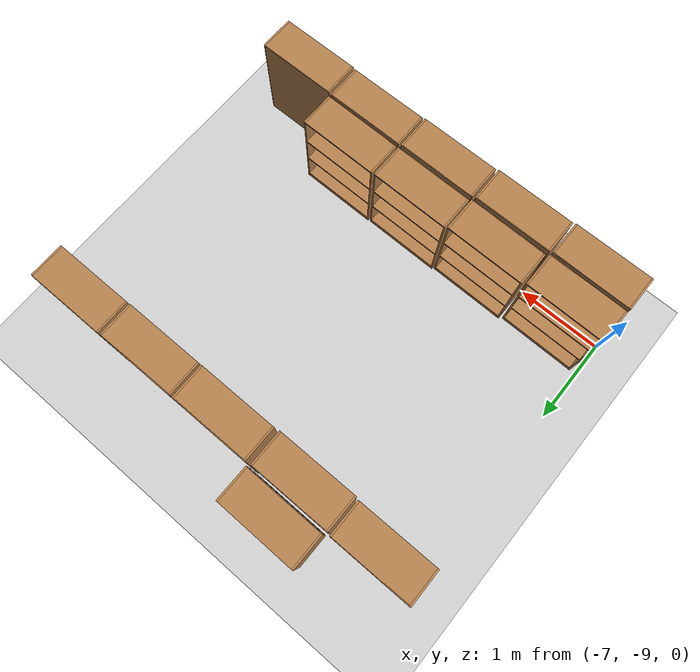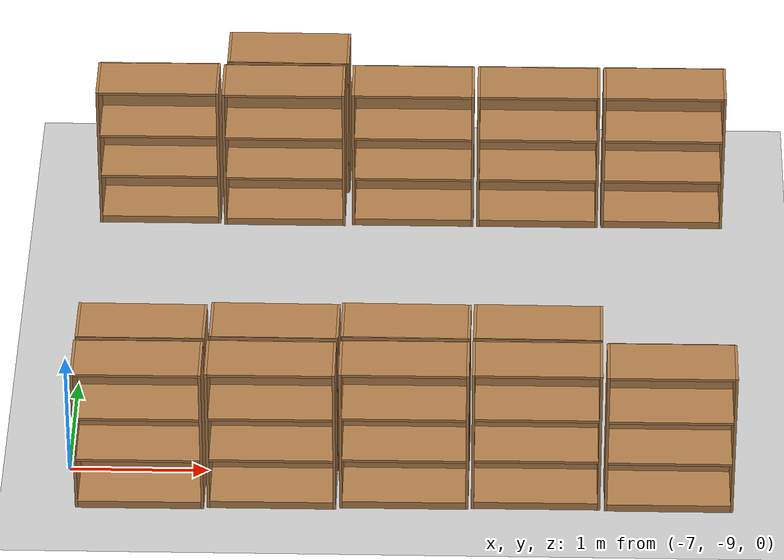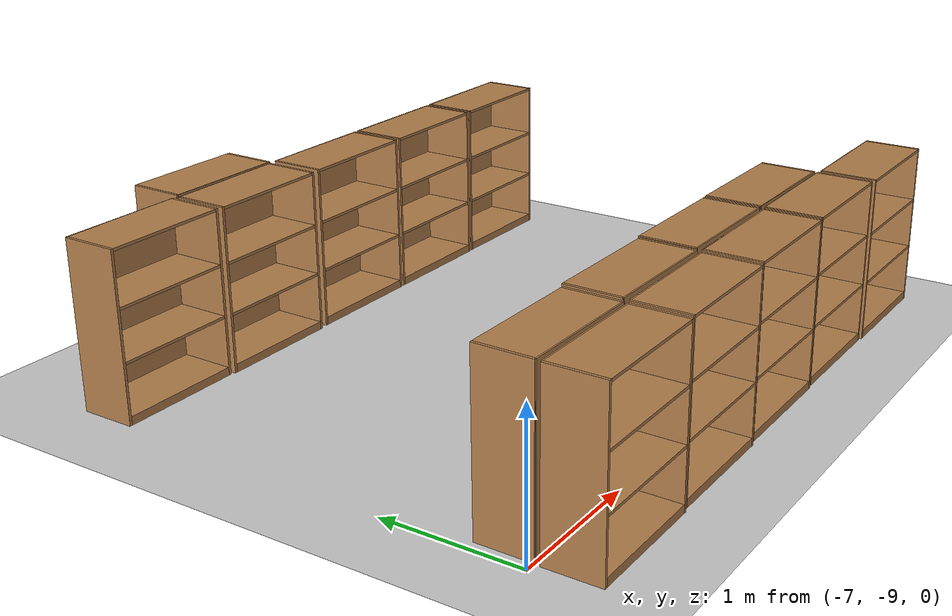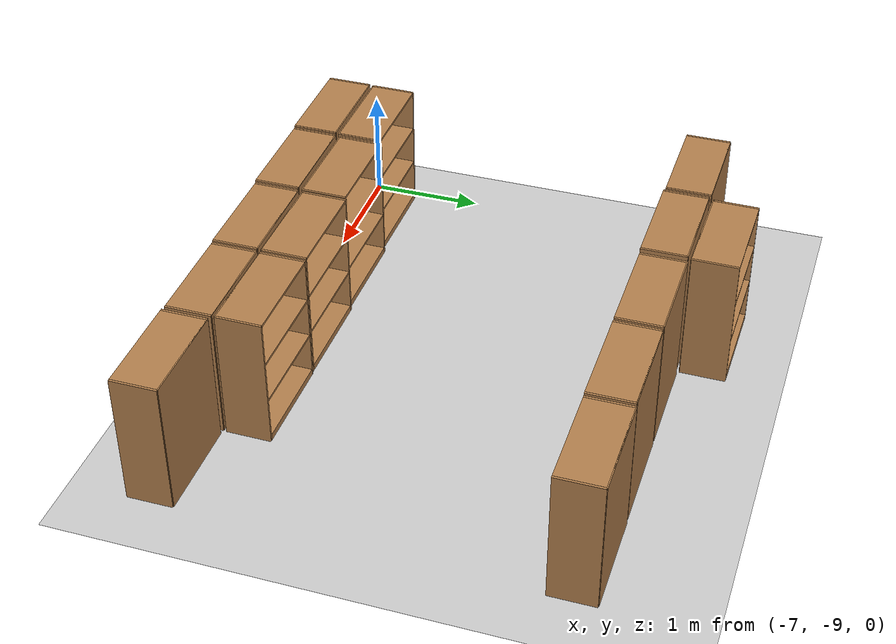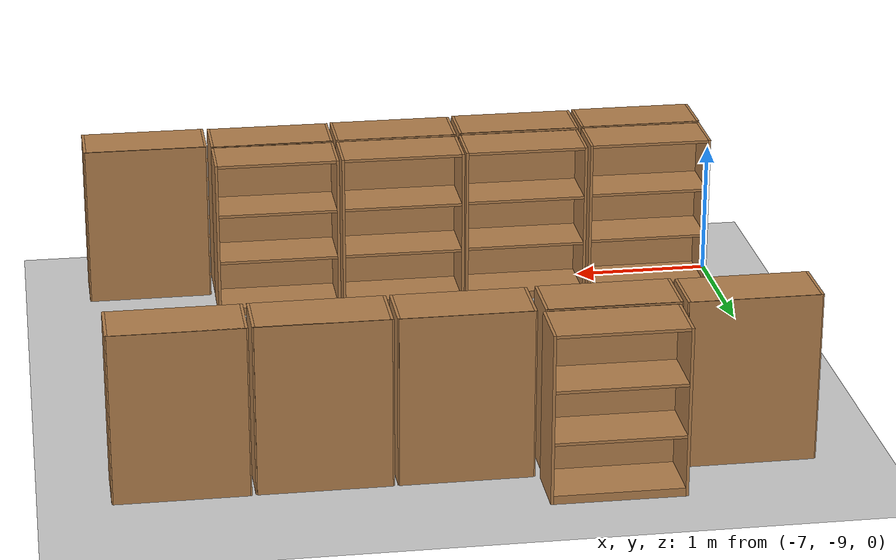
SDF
<sdf version="1.6">
 <world name="default">
  <model name="ground_plane">
   <static>1</static>
   <link name="link">
    <collision name="collision">
     <geometry><plane><normal>0 0 1</normal><size>100 100</size></plane></geometry>
     <surface>
      <contact><collide_bitmask>65535</collide_bitmask></contact>
      <friction><ode><mu>100</mu><mu2>50</mu2></ode></friction>
     </surface>
    </collision>
    <visual name="visual">
     <cast_shadows>0</cast_shadows>
     <geometry><plane><normal>0 0 1</normal><size>100 100</size></plane></geometry>
     <material>
      <script><uri>file://media/materials/scripts/gazebo.material</uri><name>Gazebo/Grey</name></script>
     </material>
    </visual>
   </link>
  </model>
  <model name="bookshelf_clone_75">
   <static>1</static>
   <link name="link">
    <inertial><mass>1</mass></inertial>
    <collision name="back">
     <pose>0 0.005 0.6 0 -0 0</pose>
     <geometry><box><size>0.9 0.01 1.2</size></box></geometry>
    </collision>
    <visual name="visual1">
     <pose>0 0.005 0.6 0 -0 0</pose>
     <geometry><box><size>0.9 0.01 1.2</size></box></geometry>
     <material>
      <script><uri>file://media/materials/scripts/gazebo.material</uri><name>Gazebo/Wood</name></script>
     </material>
    </visual>
    <collision name="left_side">
     <pose>0.45 -0.195 0.6 0 -0 0</pose>
     <geometry><box><size>0.02 0.4 1.2</size></box></geometry>
    </collision>
    <visual name="visual2">
     <pose>0.45 -0.195 0.6 0 -0 0</pose>
     <geometry><box><size>0.02 0.4 1.2</size></box></geometry>
     <material>
      <script><uri>file://media/materials/scripts/gazebo.material</uri><name>Gazebo/Wood</name></script>
     </material>
    </visual>
    <collision name="right_side">
     <pose>-0.45 -0.195 0.6 0 -0 0</pose>
     <geometry><box><size>0.02 0.4 1.2</size></box></geometry>
    </collision>
    <visual name="visual3">
     <pose>-0.45 -0.195 0.6 0 -0 0</pose>
     <geometry><box><size>0.02 0.4 1.2</size></box></geometry>
     <material>
      <script><uri>file://media/materials/scripts/gazebo.material</uri><name>Gazebo/Wood</name></script>
     </material>
    </visual>
    <collision name="bottom">
     <pose>0 -0.195 0.03 0 -0 0</pose>
     <geometry><box><size>0.88 0.4 0.06</size></box></geometry>
    </collision>
    <visual name="visual4">
     <pose>0 -0.195 0.03 0 -0 0</pose>
     <geometry><box><size>0.88 0.4 0.06</size></box></geometry>
     <material>
      <script><uri>file://media/materials/scripts/gazebo.material</uri><name>Gazebo/Wood</name></script>
     </material>
    </visual>
    <collision name="top">
     <pose>0 -0.195 1.19 0 -0 0</pose>
     <geometry><box><size>0.88 0.4 0.02</size></box></geometry>
    </collision>
    <visual name="visual5">
     <pose>0 -0.195 1.19 0 -0 0</pose>
     <geometry><box><size>0.88 0.4 0.02</size></box></geometry>
     <material>
      <script><uri>file://media/materials/scripts/gazebo.material</uri><name>Gazebo/Wood</name></script>
     </material>
    </visual>
    <collision name="low_shelf">
     <pose>0 -0.195 0.43 0 -0 0</pose>
     <geometry><box><size>0.88 0.4 0.02</size></box></geometry>
    </collision>
    <visual name="visual6">
     <pose>0 -0.195 0.43 0 -0 0</pose>
     <geometry><box><size>0.88 0.4 0.02</size></box></geometry>
     <material>
      <script><uri>file://media/materials/scripts/gazebo.material</uri><name>Gazebo/Wood</name></script>
     </material>
    </visual>
    <collision name="high_shelf">
     <pose>0 -0.195 0.8 0 -0 0</pose>
     <geometry><box><size>0.88 0.4 0.02</size></box></geometry>
    </collision>
    <visual name="visual7">
     <pose>0 -0.195 0.8 0 -0 0</pose>
     <geometry><box><size>0.88 0.4 0.02</size></box></geometry>
     <material>
      <script><uri>file://media/materials/scripts/gazebo.material</uri><name>Gazebo/Wood</name></script>
     </material>
    </visual>
   </link>
   <pose>-2.70114 -5.58327 0 0 -0 0.00089</pose>
  </model>
  <model name="bookshelf_clone_76">
   <static>1</static>
   <link name="link">
    <inertial><mass>1</mass></inertial>
    <collision name="back">
     <pose>0 0.005 0.6 0 -0 0</pose>
     <geometry><box><size>0.9 0.01 1.2</size></box></geometry>
    </collision>
    <visual name="visual1">
     <pose>0 0.005 0.6 0 -0 0</pose>
     <geometry><box><size>0.9 0.01 1.2</size></box></geometry>
     <material>
      <script><uri>file://media/materials/scripts/gazebo.material</uri><name>Gazebo/Wood</name></script>
     </material>
    </visual>
    <collision name="left_side">
     <pose>0.45 -0.195 0.6 0 -0 0</pose>
     <geometry><box><size>0.02 0.4 1.2</size></box></geometry>
    </collision>
    <visual name="visual2">
     <pose>0.45 -0.195 0.6 0 -0 0</pose>
     <geometry><box><size>0.02 0.4 1.2</size></box></geometry>
     <material>
      <script><uri>file://media/materials/scripts/gazebo.material</uri><name>Gazebo/Wood</name></script>
     </material>
    </visual>
    <collision name="right_side">
     <pose>-0.45 -0.195 0.6 0 -0 0</pose>
     <geometry><box><size>0.02 0.4 1.2</size></box></geometry>
    </collision>
    <visual name="visual3">
     <pose>-0.45 -0.195 0.6 0 -0 0</pose>
     <geometry><box><size>0.02 0.4 1.2</size></box></geometry>
     <material>
      <script><uri>file://media/materials/scripts/gazebo.material</uri><name>Gazebo/Wood</name></script>
     </material>
    </visual>
    <collision name="bottom">
     <pose>0 -0.195 0.03 0 -0 0</pose>
     <geometry><box><size>0.88 0.4 0.06</size></box></geometry>
    </collision>
    <visual name="visual4">
     <pose>0 -0.195 0.03 0 -0 0</pose>
     <geometry><box><size>0.88 0.4 0.06</size></box></geometry>
     <material>
      <script><uri>file://media/materials/scripts/gazebo.material</uri><name>Gazebo/Wood</name></script>
     </material>
    </visual>
    <collision name="top">
     <pose>0 -0.195 1.19 0 -0 0</pose>
     <geometry><box><size>0.88 0.4 0.02</size></box></geometry>
    </collision>
    <visual name="visual5">
     <pose>0 -0.195 1.19 0 -0 0</pose>
     <geometry><box><size>0.88 0.4 0.02</size></box></geometry>
     <material>
      <script><uri>file://media/materials/scripts/gazebo.material</uri><name>Gazebo/Wood</name></script>
     </material>
    </visual>
    <collision name="low_shelf">
     <pose>0 -0.195 0.43 0 -0 0</pose>
     <geometry><box><size>0.88 0.4 0.02</size></box></geometry>
    </collision>
    <visual name="visual6">
     <pose>0 -0.195 0.43 0 -0 0</pose>
     <geometry><box><size>0.88 0.4 0.02</size></box></geometry>
     <material>
      <script><uri>file://media/materials/scripts/gazebo.material</uri><name>Gazebo/Wood</name></script>
     </material>
    </visual>
    <collision name="high_shelf">
     <pose>0 -0.195 0.8 0 -0 0</pose>
     <geometry><box><size>0.88 0.4 0.02</size></box></geometry>
    </collision>
    <visual name="visual7">
     <pose>0 -0.195 0.8 0 -0 0</pose>
     <geometry><box><size>0.88 0.4 0.02</size></box></geometry>
     <material>
      <script><uri>file://media/materials/scripts/gazebo.material</uri><name>Gazebo/Wood</name></script>
     </material>
    </visual>
   </link>
   <pose>-3.64559 -5.5889 0 0 -0 0.00089</pose>
  </model>
  <model name="bookshelf_clone_77">
   <static>1</static>
   <link name="link">
    <inertial><mass>1</mass></inertial>
    <collision name="back">
     <pose>0 0.005 0.6 0 -0 0</pose>
     <geometry><box><size>0.9 0.01 1.2</size></box></geometry>
    </collision>
    <visual name="visual1">
     <pose>0 0.005 0.6 0 -0 0</pose>
     <geometry><box><size>0.9 0.01 1.2</size></box></geometry>
     <material>
      <script><uri>file://media/materials/scripts/gazebo.material</uri><name>Gazebo/Wood</name></script>
     </material>
    </visual>
    <collision name="left_side">
     <pose>0.45 -0.195 0.6 0 -0 0</pose>
     <geometry><box><size>0.02 0.4 1.2</size></box></geometry>
    </collision>
    <visual name="visual2">
     <pose>0.45 -0.195 0.6 0 -0 0</pose>
     <geometry><box><size>0.02 0.4 1.2</size></box></geometry>
     <material>
      <script><uri>file://media/materials/scripts/gazebo.material</uri><name>Gazebo/Wood</name></script>
     </material>
    </visual>
    <collision name="right_side">
     <pose>-0.45 -0.195 0.6 0 -0 0</pose>
     <geometry><box><size>0.02 0.4 1.2</size></box></geometry>
    </collision>
    <visual name="visual3">
     <pose>-0.45 -0.195 0.6 0 -0 0</pose>
     <geometry><box><size>0.02 0.4 1.2</size></box></geometry>
     <material>
      <script><uri>file://media/materials/scripts/gazebo.material</uri><name>Gazebo/Wood</name></script>
     </material>
    </visual>
    <collision name="bottom">
     <pose>0 -0.195 0.03 0 -0 0</pose>
     <geometry><box><size>0.88 0.4 0.06</size></box></geometry>
    </collision>
    <visual name="visual4">
     <pose>0 -0.195 0.03 0 -0 0</pose>
     <geometry><box><size>0.88 0.4 0.06</size></box></geometry>
     <material>
      <script><uri>file://media/materials/scripts/gazebo.material</uri><name>Gazebo/Wood</name></script>
     </material>
    </visual>
    <collision name="top">
     <pose>0 -0.195 1.19 0 -0 0</pose>
     <geometry><box><size>0.88 0.4 0.02</size></box></geometry>
    </collision>
    <visual name="visual5">
     <pose>0 -0.195 1.19 0 -0 0</pose>
     <geometry><box><size>0.88 0.4 0.02</size></box></geometry>
     <material>
      <script><uri>file://media/materials/scripts/gazebo.material</uri><name>Gazebo/Wood</name></script>
     </material>
    </visual>
    <collision name="low_shelf">
     <pose>0 -0.195 0.43 0 -0 0</pose>
     <geometry><box><size>0.88 0.4 0.02</size></box></geometry>
    </collision>
    <visual name="visual6">
     <pose>0 -0.195 0.43 0 -0 0</pose>
     <geometry><box><size>0.88 0.4 0.02</size></box></geometry>
     <material>
      <script><uri>file://media/materials/scripts/gazebo.material</uri><name>Gazebo/Wood</name></script>
     </material>
    </visual>
    <collision name="high_shelf">
     <pose>0 -0.195 0.8 0 -0 0</pose>
     <geometry><box><size>0.88 0.4 0.02</size></box></geometry>
    </collision>
    <visual name="visual7">
     <pose>0 -0.195 0.8 0 -0 0</pose>
     <geometry><box><size>0.88 0.4 0.02</size></box></geometry>
     <material>
      <script><uri>file://media/materials/scripts/gazebo.material</uri><name>Gazebo/Wood</name></script>
     </material>
    </visual>
   </link>
   <pose>-4.58884 -5.59106 0 0 -0 0.00089</pose>
  </model>
  <model name="bookshelf_clone_78">
   <static>1</static>
   <link name="link">
    <inertial><mass>1</mass></inertial>
    <collision name="back">
     <pose>0 0.005 0.6 0 -0 0</pose>
     <geometry><box><size>0.9 0.01 1.2</size></box></geometry>
    </collision>
    <visual name="visual1">
     <pose>0 0.005 0.6 0 -0 0</pose>
     <geometry><box><size>0.9 0.01 1.2</size></box></geometry>
     <material>
      <script><uri>file://media/materials/scripts/gazebo.material</uri><name>Gazebo/Wood</name></script>
     </material>
    </visual>
    <collision name="left_side">
     <pose>0.45 -0.195 0.6 0 -0 0</pose>
     <geometry><box><size>0.02 0.4 1.2</size></box></geometry>
    </collision>
    <visual name="visual2">
     <pose>0.45 -0.195 0.6 0 -0 0</pose>
     <geometry><box><size>0.02 0.4 1.2</size></box></geometry>
     <material>
      <script><uri>file://media/materials/scripts/gazebo.material</uri><name>Gazebo/Wood</name></script>
     </material>
    </visual>
    <collision name="right_side">
     <pose>-0.45 -0.195 0.6 0 -0 0</pose>
     <geometry><box><size>0.02 0.4 1.2</size></box></geometry>
    </collision>
    <visual name="visual3">
     <pose>-0.45 -0.195 0.6 0 -0 0</pose>
     <geometry><box><size>0.02 0.4 1.2</size></box></geometry>
     <material>
      <script><uri>file://media/materials/scripts/gazebo.material</uri><name>Gazebo/Wood</name></script>
     </material>
    </visual>
    <collision name="bottom">
     <pose>0 -0.195 0.03 0 -0 0</pose>
     <geometry><box><size>0.88 0.4 0.06</size></box></geometry>
    </collision>
    <visual name="visual4">
     <pose>0 -0.195 0.03 0 -0 0</pose>
     <geometry><box><size>0.88 0.4 0.06</size></box></geometry>
     <material>
      <script><uri>file://media/materials/scripts/gazebo.material</uri><name>Gazebo/Wood</name></script>
     </material>
    </visual>
    <collision name="top">
     <pose>0 -0.195 1.19 0 -0 0</pose>
     <geometry><box><size>0.88 0.4 0.02</size></box></geometry>
    </collision>
    <visual name="visual5">
     <pose>0 -0.195 1.19 0 -0 0</pose>
     <geometry><box><size>0.88 0.4 0.02</size></box></geometry>
     <material>
      <script><uri>file://media/materials/scripts/gazebo.material</uri><name>Gazebo/Wood</name></script>
     </material>
    </visual>
    <collision name="low_shelf">
     <pose>0 -0.195 0.43 0 -0 0</pose>
     <geometry><box><size>0.88 0.4 0.02</size></box></geometry>
    </collision>
    <visual name="visual6">
     <pose>0 -0.195 0.43 0 -0 0</pose>
     <geometry><box><size>0.88 0.4 0.02</size></box></geometry>
     <material>
      <script><uri>file://media/materials/scripts/gazebo.material</uri><name>Gazebo/Wood</name></script>
     </material>
    </visual>
    <collision name="high_shelf">
     <pose>0 -0.195 0.8 0 -0 0</pose>
     <geometry><box><size>0.88 0.4 0.02</size></box></geometry>
    </collision>
    <visual name="visual7">
     <pose>0 -0.195 0.8 0 -0 0</pose>
     <geometry><box><size>0.88 0.4 0.02</size></box></geometry>
     <material>
      <script><uri>file://media/materials/scripts/gazebo.material</uri><name>Gazebo/Wood</name></script>
     </material>
    </visual>
   </link>
   <pose>-5.56219 -5.6019 0 0 -0 0.00089</pose>
  </model>
  <model name="bookshelf_clone_79">
   <static>1</static>
   <link name="link">
    <inertial><mass>1</mass></inertial>
    <collision name="back">
     <pose>0 0.005 0.6 0 -0 0</pose>
     <geometry><box><size>0.9 0.01 1.2</size></box></geometry>
    </collision>
    <visual name="visual1">
     <pose>0 0.005 0.6 0 -0 0</pose>
     <geometry><box><size>0.9 0.01 1.2</size></box></geometry>
     <material>
      <script><uri>file://media/materials/scripts/gazebo.material</uri><name>Gazebo/Wood</name></script>
     </material>
    </visual>
    <collision name="left_side">
     <pose>0.45 -0.195 0.6 0 -0 0</pose>
     <geometry><box><size>0.02 0.4 1.2</size></box></geometry>
    </collision>
    <visual name="visual2">
     <pose>0.45 -0.195 0.6 0 -0 0</pose>
     <geometry><box><size>0.02 0.4 1.2</size></box></geometry>
     <material>
      <script><uri>file://media/materials/scripts/gazebo.material</uri><name>Gazebo/Wood</name></script>
     </material>
    </visual>
    <collision name="right_side">
     <pose>-0.45 -0.195 0.6 0 -0 0</pose>
     <geometry><box><size>0.02 0.4 1.2</size></box></geometry>
    </collision>
    <visual name="visual3">
     <pose>-0.45 -0.195 0.6 0 -0 0</pose>
     <geometry><box><size>0.02 0.4 1.2</size></box></geometry>
     <material>
      <script><uri>file://media/materials/scripts/gazebo.material</uri><name>Gazebo/Wood</name></script>
     </material>
    </visual>
    <collision name="bottom">
     <pose>0 -0.195 0.03 0 -0 0</pose>
     <geometry><box><size>0.88 0.4 0.06</size></box></geometry>
    </collision>
    <visual name="visual4">
     <pose>0 -0.195 0.03 0 -0 0</pose>
     <geometry><box><size>0.88 0.4 0.06</size></box></geometry>
     <material>
      <script><uri>file://media/materials/scripts/gazebo.material</uri><name>Gazebo/Wood</name></script>
     </material>
    </visual>
    <collision name="top">
     <pose>0 -0.195 1.19 0 -0 0</pose>
     <geometry><box><size>0.88 0.4 0.02</size></box></geometry>
    </collision>
    <visual name="visual5">
     <pose>0 -0.195 1.19 0 -0 0</pose>
     <geometry><box><size>0.88 0.4 0.02</size></box></geometry>
     <material>
      <script><uri>file://media/materials/scripts/gazebo.material</uri><name>Gazebo/Wood</name></script>
     </material>
    </visual>
    <collision name="low_shelf">
     <pose>0 -0.195 0.43 0 -0 0</pose>
     <geometry><box><size>0.88 0.4 0.02</size></box></geometry>
    </collision>
    <visual name="visual6">
     <pose>0 -0.195 0.43 0 -0 0</pose>
     <geometry><box><size>0.88 0.4 0.02</size></box></geometry>
     <material>
      <script><uri>file://media/materials/scripts/gazebo.material</uri><name>Gazebo/Wood</name></script>
     </material>
    </visual>
    <collision name="high_shelf">
     <pose>0 -0.195 0.8 0 -0 0</pose>
     <geometry><box><size>0.88 0.4 0.02</size></box></geometry>
    </collision>
    <visual name="visual7">
     <pose>0 -0.195 0.8 0 -0 0</pose>
     <geometry><box><size>0.88 0.4 0.02</size></box></geometry>
     <material>
      <script><uri>file://media/materials/scripts/gazebo.material</uri><name>Gazebo/Wood</name></script>
     </material>
    </visual>
   </link>
   <pose>-6.50801 -5.58995 0 0 -0 0.00089</pose>
  </model>
  <model name="bookshelf_clone_81">
   <static>1</static>
   <link name="link">
    <inertial><mass>1</mass></inertial>
    <collision name="back">
     <pose>0 0.005 0.6 0 -0 0</pose>
     <geometry><box><size>0.9 0.01 1.2</size></box></geometry>
    </collision>
    <visual name="visual1">
     <pose>0 0.005 0.6 0 -0 0</pose>
     <geometry><box><size>0.9 0.01 1.2</size></box></geometry>
     <material>
      <script><uri>file://media/materials/scripts/gazebo.material</uri><name>Gazebo/Wood</name></script>
     </material>
    </visual>
    <collision name="left_side">
     <pose>0.45 -0.195 0.6 0 -0 0</pose>
     <geometry><box><size>0.02 0.4 1.2</size></box></geometry>
    </collision>
    <visual name="visual2">
     <pose>0.45 -0.195 0.6 0 -0 0</pose>
     <geometry><box><size>0.02 0.4 1.2</size></box></geometry>
     <material>
      <script><uri>file://media/materials/scripts/gazebo.material</uri><name>Gazebo/Wood</name></script>
     </material>
    </visual>
    <collision name="right_side">
     <pose>-0.45 -0.195 0.6 0 -0 0</pose>
     <geometry><box><size>0.02 0.4 1.2</size></box></geometry>
    </collision>
    <visual name="visual3">
     <pose>-0.45 -0.195 0.6 0 -0 0</pose>
     <geometry><box><size>0.02 0.4 1.2</size></box></geometry>
     <material>
      <script><uri>file://media/materials/scripts/gazebo.material</uri><name>Gazebo/Wood</name></script>
     </material>
    </visual>
    <collision name="bottom">
     <pose>0 -0.195 0.03 0 -0 0</pose>
     <geometry><box><size>0.88 0.4 0.06</size></box></geometry>
    </collision>
    <visual name="visual4">
     <pose>0 -0.195 0.03 0 -0 0</pose>
     <geometry><box><size>0.88 0.4 0.06</size></box></geometry>
     <material>
      <script><uri>file://media/materials/scripts/gazebo.material</uri><name>Gazebo/Wood</name></script>
     </material>
    </visual>
    <collision name="top">
     <pose>0 -0.195 1.19 0 -0 0</pose>
     <geometry><box><size>0.88 0.4 0.02</size></box></geometry>
    </collision>
    <visual name="visual5">
     <pose>0 -0.195 1.19 0 -0 0</pose>
     <geometry><box><size>0.88 0.4 0.02</size></box></geometry>
     <material>
      <script><uri>file://media/materials/scripts/gazebo.material</uri><name>Gazebo/Wood</name></script>
     </material>
    </visual>
    <collision name="low_shelf">
     <pose>0 -0.195 0.43 0 -0 0</pose>
     <geometry><box><size>0.88 0.4 0.02</size></box></geometry>
    </collision>
    <visual name="visual6">
     <pose>0 -0.195 0.43 0 -0 0</pose>
     <geometry><box><size>0.88 0.4 0.02</size></box></geometry>
     <material>
      <script><uri>file://media/materials/scripts/gazebo.material</uri><name>Gazebo/Wood</name></script>
     </material>
    </visual>
    <collision name="high_shelf">
     <pose>0 -0.195 0.8 0 -0 0</pose>
     <geometry><box><size>0.88 0.4 0.02</size></box></geometry>
    </collision>
    <visual name="visual7">
     <pose>0 -0.195 0.8 0 -0 0</pose>
     <geometry><box><size>0.88 0.4 0.02</size></box></geometry>
     <material>
      <script><uri>file://media/materials/scripts/gazebo.material</uri><name>Gazebo/Wood</name></script>
     </material>
    </visual>
   </link>
   <pose>-2.69691 -9.00935 0 0 -0 0.00089</pose>
  </model>
  <model name="bookshelf_clone_82">
   <static>1</static>
   <link name="link">
    <inertial><mass>1</mass></inertial>
    <collision name="back">
     <pose>0 0.005 0.6 0 -0 0</pose>
     <geometry><box><size>0.9 0.01 1.2</size></box></geometry>
    </collision>
    <visual name="visual1">
     <pose>0 0.005 0.6 0 -0 0</pose>
     <geometry><box><size>0.9 0.01 1.2</size></box></geometry>
     <material>
      <script><uri>file://media/materials/scripts/gazebo.material</uri><name>Gazebo/Wood</name></script>
     </material>
    </visual>
    <collision name="left_side">
     <pose>0.45 -0.195 0.6 0 -0 0</pose>
     <geometry><box><size>0.02 0.4 1.2</size></box></geometry>
    </collision>
    <visual name="visual2">
     <pose>0.45 -0.195 0.6 0 -0 0</pose>
     <geometry><box><size>0.02 0.4 1.2</size></box></geometry>
     <material>
      <script><uri>file://media/materials/scripts/gazebo.material</uri><name>Gazebo/Wood</name></script>
     </material>
    </visual>
    <collision name="right_side">
     <pose>-0.45 -0.195 0.6 0 -0 0</pose>
     <geometry><box><size>0.02 0.4 1.2</size></box></geometry>
    </collision>
    <visual name="visual3">
     <pose>-0.45 -0.195 0.6 0 -0 0</pose>
     <geometry><box><size>0.02 0.4 1.2</size></box></geometry>
     <material>
      <script><uri>file://media/materials/scripts/gazebo.material</uri><name>Gazebo/Wood</name></script>
     </material>
    </visual>
    <collision name="bottom">
     <pose>0 -0.195 0.03 0 -0 0</pose>
     <geometry><box><size>0.88 0.4 0.06</size></box></geometry>
    </collision>
    <visual name="visual4">
     <pose>0 -0.195 0.03 0 -0 0</pose>
     <geometry><box><size>0.88 0.4 0.06</size></box></geometry>
     <material>
      <script><uri>file://media/materials/scripts/gazebo.material</uri><name>Gazebo/Wood</name></script>
     </material>
    </visual>
    <collision name="top">
     <pose>0 -0.195 1.19 0 -0 0</pose>
     <geometry><box><size>0.88 0.4 0.02</size></box></geometry>
    </collision>
    <visual name="visual5">
     <pose>0 -0.195 1.19 0 -0 0</pose>
     <geometry><box><size>0.88 0.4 0.02</size></box></geometry>
     <material>
      <script><uri>file://media/materials/scripts/gazebo.material</uri><name>Gazebo/Wood</name></script>
     </material>
    </visual>
    <collision name="low_shelf">
     <pose>0 -0.195 0.43 0 -0 0</pose>
     <geometry><box><size>0.88 0.4 0.02</size></box></geometry>
    </collision>
    <visual name="visual6">
     <pose>0 -0.195 0.43 0 -0 0</pose>
     <geometry><box><size>0.88 0.4 0.02</size></box></geometry>
     <material>
      <script><uri>file://media/materials/scripts/gazebo.material</uri><name>Gazebo/Wood</name></script>
     </material>
    </visual>
    <collision name="high_shelf">
     <pose>0 -0.195 0.8 0 -0 0</pose>
     <geometry><box><size>0.88 0.4 0.02</size></box></geometry>
    </collision>
    <visual name="visual7">
     <pose>0 -0.195 0.8 0 -0 0</pose>
     <geometry><box><size>0.88 0.4 0.02</size></box></geometry>
     <material>
      <script><uri>file://media/materials/scripts/gazebo.material</uri><name>Gazebo/Wood</name></script>
     </material>
    </visual>
   </link>
   <pose>-3.64625 -9.00055 0 0 -0 0.00089</pose>
  </model>
  <model name="bookshelf_clone_83">
   <static>1</static>
   <link name="link">
    <inertial><mass>1</mass></inertial>
    <collision name="back">
     <pose>0 0.005 0.6 0 -0 0</pose>
     <geometry><box><size>0.9 0.01 1.2</size></box></geometry>
    </collision>
    <visual name="visual1">
     <pose>0 0.005 0.6 0 -0 0</pose>
     <geometry><box><size>0.9 0.01 1.2</size></box></geometry>
     <material>
      <script><uri>file://media/materials/scripts/gazebo.material</uri><name>Gazebo/Wood</name></script>
     </material>
    </visual>
    <collision name="left_side">
     <pose>0.45 -0.195 0.6 0 -0 0</pose>
     <geometry><box><size>0.02 0.4 1.2</size></box></geometry>
    </collision>
    <visual name="visual2">
     <pose>0.45 -0.195 0.6 0 -0 0</pose>
     <geometry><box><size>0.02 0.4 1.2</size></box></geometry>
     <material>
      <script><uri>file://media/materials/scripts/gazebo.material</uri><name>Gazebo/Wood</name></script>
     </material>
    </visual>
    <collision name="right_side">
     <pose>-0.45 -0.195 0.6 0 -0 0</pose>
     <geometry><box><size>0.02 0.4 1.2</size></box></geometry>
    </collision>
    <visual name="visual3">
     <pose>-0.45 -0.195 0.6 0 -0 0</pose>
     <geometry><box><size>0.02 0.4 1.2</size></box></geometry>
     <material>
      <script><uri>file://media/materials/scripts/gazebo.material</uri><name>Gazebo/Wood</name></script>
     </material>
    </visual>
    <collision name="bottom">
     <pose>0 -0.195 0.03 0 -0 0</pose>
     <geometry><box><size>0.88 0.4 0.06</size></box></geometry>
    </collision>
    <visual name="visual4">
     <pose>0 -0.195 0.03 0 -0 0</pose>
     <geometry><box><size>0.88 0.4 0.06</size></box></geometry>
     <material>
      <script><uri>file://media/materials/scripts/gazebo.material</uri><name>Gazebo/Wood</name></script>
     </material>
    </visual>
    <collision name="top">
     <pose>0 -0.195 1.19 0 -0 0</pose>
     <geometry><box><size>0.88 0.4 0.02</size></box></geometry>
    </collision>
    <visual name="visual5">
     <pose>0 -0.195 1.19 0 -0 0</pose>
     <geometry><box><size>0.88 0.4 0.02</size></box></geometry>
     <material>
      <script><uri>file://media/materials/scripts/gazebo.material</uri><name>Gazebo/Wood</name></script>
     </material>
    </visual>
    <collision name="low_shelf">
     <pose>0 -0.195 0.43 0 -0 0</pose>
     <geometry><box><size>0.88 0.4 0.02</size></box></geometry>
    </collision>
    <visual name="visual6">
     <pose>0 -0.195 0.43 0 -0 0</pose>
     <geometry><box><size>0.88 0.4 0.02</size></box></geometry>
     <material>
      <script><uri>file://media/materials/scripts/gazebo.material</uri><name>Gazebo/Wood</name></script>
     </material>
    </visual>
    <collision name="high_shelf">
     <pose>0 -0.195 0.8 0 -0 0</pose>
     <geometry><box><size>0.88 0.4 0.02</size></box></geometry>
    </collision>
    <visual name="visual7">
     <pose>0 -0.195 0.8 0 -0 0</pose>
     <geometry><box><size>0.88 0.4 0.02</size></box></geometry>
     <material>
      <script><uri>file://media/materials/scripts/gazebo.material</uri><name>Gazebo/Wood</name></script>
     </material>
    </visual>
   </link>
   <pose>-4.58638 -9.0121 0 0 -0 0.00089</pose>
  </model>
  <model name="bookshelf_clone_84">
   <static>1</static>
   <link name="link">
    <inertial><mass>1</mass></inertial>
    <collision name="back">
     <pose>0 0.005 0.6 0 -0 0</pose>
     <geometry><box><size>0.9 0.01 1.2</size></box></geometry>
    </collision>
    <visual name="visual1">
     <pose>0 0.005 0.6 0 -0 0</pose>
     <geometry><box><size>0.9 0.01 1.2</size></box></geometry>
     <material>
      <script><uri>file://media/materials/scripts/gazebo.material</uri><name>Gazebo/Wood</name></script>
     </material>
    </visual>
    <collision name="left_side">
     <pose>0.45 -0.195 0.6 0 -0 0</pose>
     <geometry><box><size>0.02 0.4 1.2</size></box></geometry>
    </collision>
    <visual name="visual2">
     <pose>0.45 -0.195 0.6 0 -0 0</pose>
     <geometry><box><size>0.02 0.4 1.2</size></box></geometry>
     <material>
      <script><uri>file://media/materials/scripts/gazebo.material</uri><name>Gazebo/Wood</name></script>
     </material>
    </visual>
    <collision name="right_side">
     <pose>-0.45 -0.195 0.6 0 -0 0</pose>
     <geometry><box><size>0.02 0.4 1.2</size></box></geometry>
    </collision>
    <visual name="visual3">
     <pose>-0.45 -0.195 0.6 0 -0 0</pose>
     <geometry><box><size>0.02 0.4 1.2</size></box></geometry>
     <material>
      <script><uri>file://media/materials/scripts/gazebo.material</uri><name>Gazebo/Wood</name></script>
     </material>
    </visual>
    <collision name="bottom">
     <pose>0 -0.195 0.03 0 -0 0</pose>
     <geometry><box><size>0.88 0.4 0.06</size></box></geometry>
    </collision>
    <visual name="visual4">
     <pose>0 -0.195 0.03 0 -0 0</pose>
     <geometry><box><size>0.88 0.4 0.06</size></box></geometry>
     <material>
      <script><uri>file://media/materials/scripts/gazebo.material</uri><name>Gazebo/Wood</name></script>
     </material>
    </visual>
    <collision name="top">
     <pose>0 -0.195 1.19 0 -0 0</pose>
     <geometry><box><size>0.88 0.4 0.02</size></box></geometry>
    </collision>
    <visual name="visual5">
     <pose>0 -0.195 1.19 0 -0 0</pose>
     <geometry><box><size>0.88 0.4 0.02</size></box></geometry>
     <material>
      <script><uri>file://media/materials/scripts/gazebo.material</uri><name>Gazebo/Wood</name></script>
     </material>
    </visual>
    <collision name="low_shelf">
     <pose>0 -0.195 0.43 0 -0 0</pose>
     <geometry><box><size>0.88 0.4 0.02</size></box></geometry>
    </collision>
    <visual name="visual6">
     <pose>0 -0.195 0.43 0 -0 0</pose>
     <geometry><box><size>0.88 0.4 0.02</size></box></geometry>
     <material>
      <script><uri>file://media/materials/scripts/gazebo.material</uri><name>Gazebo/Wood</name></script>
     </material>
    </visual>
    <collision name="high_shelf">
     <pose>0 -0.195 0.8 0 -0 0</pose>
     <geometry><box><size>0.88 0.4 0.02</size></box></geometry>
    </collision>
    <visual name="visual7">
     <pose>0 -0.195 0.8 0 -0 0</pose>
     <geometry><box><size>0.88 0.4 0.02</size></box></geometry>
     <material>
      <script><uri>file://media/materials/scripts/gazebo.material</uri><name>Gazebo/Wood</name></script>
     </material>
    </visual>
   </link>
   <pose>-5.53096 -9.02894 0 0 -0 0.00089</pose>
  </model>
  <model name="bookshelf_clone_85">
   <static>1</static>
   <link name="link">
    <inertial><mass>1</mass></inertial>
    <collision name="back">
     <pose>0 0.005 0.6 0 -0 0</pose>
     <geometry><box><size>0.9 0.01 1.2</size></box></geometry>
    </collision>
    <visual name="visual1">
     <pose>0 0.005 0.6 0 -0 0</pose>
     <geometry><box><size>0.9 0.01 1.2</size></box></geometry>
     <material>
      <script><uri>file://media/materials/scripts/gazebo.material</uri><name>Gazebo/Wood</name></script>
     </material>
    </visual>
    <collision name="left_side">
     <pose>0.45 -0.195 0.6 0 -0 0</pose>
     <geometry><box><size>0.02 0.4 1.2</size></box></geometry>
    </collision>
    <visual name="visual2">
     <pose>0.45 -0.195 0.6 0 -0 0</pose>
     <geometry><box><size>0.02 0.4 1.2</size></box></geometry>
     <material>
      <script><uri>file://media/materials/scripts/gazebo.material</uri><name>Gazebo/Wood</name></script>
     </material>
    </visual>
    <collision name="right_side">
     <pose>-0.45 -0.195 0.6 0 -0 0</pose>
     <geometry><box><size>0.02 0.4 1.2</size></box></geometry>
    </collision>
    <visual name="visual3">
     <pose>-0.45 -0.195 0.6 0 -0 0</pose>
     <geometry><box><size>0.02 0.4 1.2</size></box></geometry>
     <material>
      <script><uri>file://media/materials/scripts/gazebo.material</uri><name>Gazebo/Wood</name></script>
     </material>
    </visual>
    <collision name="bottom">
     <pose>0 -0.195 0.03 0 -0 0</pose>
     <geometry><box><size>0.88 0.4 0.06</size></box></geometry>
    </collision>
    <visual name="visual4">
     <pose>0 -0.195 0.03 0 -0 0</pose>
     <geometry><box><size>0.88 0.4 0.06</size></box></geometry>
     <material>
      <script><uri>file://media/materials/scripts/gazebo.material</uri><name>Gazebo/Wood</name></script>
     </material>
    </visual>
    <collision name="top">
     <pose>0 -0.195 1.19 0 -0 0</pose>
     <geometry><box><size>0.88 0.4 0.02</size></box></geometry>
    </collision>
    <visual name="visual5">
     <pose>0 -0.195 1.19 0 -0 0</pose>
     <geometry><box><size>0.88 0.4 0.02</size></box></geometry>
     <material>
      <script><uri>file://media/materials/scripts/gazebo.material</uri><name>Gazebo/Wood</name></script>
     </material>
    </visual>
    <collision name="low_shelf">
     <pose>0 -0.195 0.43 0 -0 0</pose>
     <geometry><box><size>0.88 0.4 0.02</size></box></geometry>
    </collision>
    <visual name="visual6">
     <pose>0 -0.195 0.43 0 -0 0</pose>
     <geometry><box><size>0.88 0.4 0.02</size></box></geometry>
     <material>
      <script><uri>file://media/materials/scripts/gazebo.material</uri><name>Gazebo/Wood</name></script>
     </material>
    </visual>
    <collision name="high_shelf">
     <pose>0 -0.195 0.8 0 -0 0</pose>
     <geometry><box><size>0.88 0.4 0.02</size></box></geometry>
    </collision>
    <visual name="visual7">
     <pose>0 -0.195 0.8 0 -0 0</pose>
     <geometry><box><size>0.88 0.4 0.02</size></box></geometry>
     <material>
      <script><uri>file://media/materials/scripts/gazebo.material</uri><name>Gazebo/Wood</name></script>
     </material>
    </visual>
   </link>
   <pose>-6.47361 -9.04393 0 0 -0 0.00089</pose>
  </model>
  <model name="bookshelf_clone_90">
   <static>1</static>
   <link name="link">
    <inertial><mass>1</mass></inertial>
    <collision name="back">
     <pose>0 0.005 0.6 0 -0 0</pose>
     <geometry><box><size>0.9 0.01 1.2</size></box></geometry>
    </collision>
    <visual name="visual1">
     <pose>0 0.005 0.6 0 -0 0</pose>
     <geometry><box><size>0.9 0.01 1.2</size></box></geometry>
     <material>
      <script><uri>file://media/materials/scripts/gazebo.material</uri><name>Gazebo/Wood</name></script>
     </material>
    </visual>
    <collision name="left_side">
     <pose>0.45 -0.195 0.6 0 -0 0</pose>
     <geometry><box><size>0.02 0.4 1.2</size></box></geometry>
    </collision>
    <visual name="visual2">
     <pose>0.45 -0.195 0.6 0 -0 0</pose>
     <geometry><box><size>0.02 0.4 1.2</size></box></geometry>
     <material>
      <script><uri>file://media/materials/scripts/gazebo.material</uri><name>Gazebo/Wood</name></script>
     </material>
    </visual>
    <collision name="right_side">
     <pose>-0.45 -0.195 0.6 0 -0 0</pose>
     <geometry><box><size>0.02 0.4 1.2</size></box></geometry>
    </collision>
    <visual name="visual3">
     <pose>-0.45 -0.195 0.6 0 -0 0</pose>
     <geometry><box><size>0.02 0.4 1.2</size></box></geometry>
     <material>
      <script><uri>file://media/materials/scripts/gazebo.material</uri><name>Gazebo/Wood</name></script>
     </material>
    </visual>
    <collision name="bottom">
     <pose>0 -0.195 0.03 0 -0 0</pose>
     <geometry><box><size>0.88 0.4 0.06</size></box></geometry>
    </collision>
    <visual name="visual4">
     <pose>0 -0.195 0.03 0 -0 0</pose>
     <geometry><box><size>0.88 0.4 0.06</size></box></geometry>
     <material>
      <script><uri>file://media/materials/scripts/gazebo.material</uri><name>Gazebo/Wood</name></script>
     </material>
    </visual>
    <collision name="top">
     <pose>0 -0.195 1.19 0 -0 0</pose>
     <geometry><box><size>0.88 0.4 0.02</size></box></geometry>
    </collision>
    <visual name="visual5">
     <pose>0 -0.195 1.19 0 -0 0</pose>
     <geometry><box><size>0.88 0.4 0.02</size></box></geometry>
     <material>
      <script><uri>file://media/materials/scripts/gazebo.material</uri><name>Gazebo/Wood</name></script>
     </material>
    </visual>
    <collision name="low_shelf">
     <pose>0 -0.195 0.43 0 -0 0</pose>
     <geometry><box><size>0.88 0.4 0.02</size></box></geometry>
    </collision>
    <visual name="visual6">
     <pose>0 -0.195 0.43 0 -0 0</pose>
     <geometry><box><size>0.88 0.4 0.02</size></box></geometry>
     <material>
      <script><uri>file://media/materials/scripts/gazebo.material</uri><name>Gazebo/Wood</name></script>
     </material>
    </visual>
    <collision name="high_shelf">
     <pose>0 -0.195 0.8 0 -0 0</pose>
     <geometry><box><size>0.88 0.4 0.02</size></box></geometry>
    </collision>
    <visual name="visual7">
     <pose>0 -0.195 0.8 0 -0 0</pose>
     <geometry><box><size>0.88 0.4 0.02</size></box></geometry>
     <material>
      <script><uri>file://media/materials/scripts/gazebo.material</uri><name>Gazebo/Wood</name></script>
     </material>
    </visual>
   </link>
   <pose>-5.53787 -5.55548 0 0 -0 3.1353</pose>
  </model>
  <model name="bookshelf_clone_94">
   <static>1</static>
   <link name="link">
    <inertial><mass>1</mass></inertial>
    <collision name="back">
     <pose>0 0.005 0.6 0 -0 0</pose>
     <geometry><box><size>0.9 0.01 1.2</size></box></geometry>
    </collision>
    <visual name="visual1">
     <pose>0 0.005 0.6 0 -0 0</pose>
     <geometry><box><size>0.9 0.01 1.2</size></box></geometry>
     <material>
      <script><uri>file://media/materials/scripts/gazebo.material</uri><name>Gazebo/Wood</name></script>
     </material>
    </visual>
    <collision name="left_side">
     <pose>0.45 -0.195 0.6 0 -0 0</pose>
     <geometry><box><size>0.02 0.4 1.2</size></box></geometry>
    </collision>
    <visual name="visual2">
     <pose>0.45 -0.195 0.6 0 -0 0</pose>
     <geometry><box><size>0.02 0.4 1.2</size></box></geometry>
     <material>
      <script><uri>file://media/materials/scripts/gazebo.material</uri><name>Gazebo/Wood</name></script>
     </material>
    </visual>
    <collision name="right_side">
     <pose>-0.45 -0.195 0.6 0 -0 0</pose>
     <geometry><box><size>0.02 0.4 1.2</size></box></geometry>
    </collision>
    <visual name="visual3">
     <pose>-0.45 -0.195 0.6 0 -0 0</pose>
     <geometry><box><size>0.02 0.4 1.2</size></box></geometry>
     <material>
      <script><uri>file://media/materials/scripts/gazebo.material</uri><name>Gazebo/Wood</name></script>
     </material>
    </visual>
    <collision name="bottom">
     <pose>0 -0.195 0.03 0 -0 0</pose>
     <geometry><box><size>0.88 0.4 0.06</size></box></geometry>
    </collision>
    <visual name="visual4">
     <pose>0 -0.195 0.03 0 -0 0</pose>
     <geometry><box><size>0.88 0.4 0.06</size></box></geometry>
     <material>
      <script><uri>file://media/materials/scripts/gazebo.material</uri><name>Gazebo/Wood</name></script>
     </material>
    </visual>
    <collision name="top">
     <pose>0 -0.195 1.19 0 -0 0</pose>
     <geometry><box><size>0.88 0.4 0.02</size></box></geometry>
    </collision>
    <visual name="visual5">
     <pose>0 -0.195 1.19 0 -0 0</pose>
     <geometry><box><size>0.88 0.4 0.02</size></box></geometry>
     <material>
      <script><uri>file://media/materials/scripts/gazebo.material</uri><name>Gazebo/Wood</name></script>
     </material>
    </visual>
    <collision name="low_shelf">
     <pose>0 -0.195 0.43 0 -0 0</pose>
     <geometry><box><size>0.88 0.4 0.02</size></box></geometry>
    </collision>
    <visual name="visual6">
     <pose>0 -0.195 0.43 0 -0 0</pose>
     <geometry><box><size>0.88 0.4 0.02</size></box></geometry>
     <material>
      <script><uri>file://media/materials/scripts/gazebo.material</uri><name>Gazebo/Wood</name></script>
     </material>
    </visual>
    <collision name="high_shelf">
     <pose>0 -0.195 0.8 0 -0 0</pose>
     <geometry><box><size>0.88 0.4 0.02</size></box></geometry>
    </collision>
    <visual name="visual7">
     <pose>0 -0.195 0.8 0 -0 0</pose>
     <geometry><box><size>0.88 0.4 0.02</size></box></geometry>
     <material>
      <script><uri>file://media/materials/scripts/gazebo.material</uri><name>Gazebo/Wood</name></script>
     </material>
    </visual>
   </link>
   <pose>-3.64384 -8.9598 0 0 -0 3.1353</pose>
  </model>
  <model name="bookshelf_clone_95">
   <static>1</static>
   <link name="link">
    <inertial><mass>1</mass></inertial>
    <collision name="back">
     <pose>0 0.005 0.6 0 -0 0</pose>
     <geometry><box><size>0.9 0.01 1.2</size></box></geometry>
    </collision>
    <visual name="visual1">
     <pose>0 0.005 0.6 0 -0 0</pose>
     <geometry><box><size>0.9 0.01 1.2</size></box></geometry>
     <material>
      <script><uri>file://media/materials/scripts/gazebo.material</uri><name>Gazebo/Wood</name></script>
     </material>
    </visual>
    <collision name="left_side">
     <pose>0.45 -0.195 0.6 0 -0 0</pose>
     <geometry><box><size>0.02 0.4 1.2</size></box></geometry>
    </collision>
    <visual name="visual2">
     <pose>0.45 -0.195 0.6 0 -0 0</pose>
     <geometry><box><size>0.02 0.4 1.2</size></box></geometry>
     <material>
      <script><uri>file://media/materials/scripts/gazebo.material</uri><name>Gazebo/Wood</name></script>
     </material>
    </visual>
    <collision name="right_side">
     <pose>-0.45 -0.195 0.6 0 -0 0</pose>
     <geometry><box><size>0.02 0.4 1.2</size></box></geometry>
    </collision>
    <visual name="visual3">
     <pose>-0.45 -0.195 0.6 0 -0 0</pose>
     <geometry><box><size>0.02 0.4 1.2</size></box></geometry>
     <material>
      <script><uri>file://media/materials/scripts/gazebo.material</uri><name>Gazebo/Wood</name></script>
     </material>
    </visual>
    <collision name="bottom">
     <pose>0 -0.195 0.03 0 -0 0</pose>
     <geometry><box><size>0.88 0.4 0.06</size></box></geometry>
    </collision>
    <visual name="visual4">
     <pose>0 -0.195 0.03 0 -0 0</pose>
     <geometry><box><size>0.88 0.4 0.06</size></box></geometry>
     <material>
      <script><uri>file://media/materials/scripts/gazebo.material</uri><name>Gazebo/Wood</name></script>
     </material>
    </visual>
    <collision name="top">
     <pose>0 -0.195 1.19 0 -0 0</pose>
     <geometry><box><size>0.88 0.4 0.02</size></box></geometry>
    </collision>
    <visual name="visual5">
     <pose>0 -0.195 1.19 0 -0 0</pose>
     <geometry><box><size>0.88 0.4 0.02</size></box></geometry>
     <material>
      <script><uri>file://media/materials/scripts/gazebo.material</uri><name>Gazebo/Wood</name></script>
     </material>
    </visual>
    <collision name="low_shelf">
     <pose>0 -0.195 0.43 0 -0 0</pose>
     <geometry><box><size>0.88 0.4 0.02</size></box></geometry>
    </collision>
    <visual name="visual6">
     <pose>0 -0.195 0.43 0 -0 0</pose>
     <geometry><box><size>0.88 0.4 0.02</size></box></geometry>
     <material>
      <script><uri>file://media/materials/scripts/gazebo.material</uri><name>Gazebo/Wood</name></script>
     </material>
    </visual>
    <collision name="high_shelf">
     <pose>0 -0.195 0.8 0 -0 0</pose>
     <geometry><box><size>0.88 0.4 0.02</size></box></geometry>
    </collision>
    <visual name="visual7">
     <pose>0 -0.195 0.8 0 -0 0</pose>
     <geometry><box><size>0.88 0.4 0.02</size></box></geometry>
     <material>
      <script><uri>file://media/materials/scripts/gazebo.material</uri><name>Gazebo/Wood</name></script>
     </material>
    </visual>
   </link>
   <pose>-4.58358 -8.96106 0 0 -0 3.1353</pose>
  </model>
  <model name="bookshelf_clone_96">
   <static>1</static>
   <link name="link">
    <inertial><mass>1</mass></inertial>
    <collision name="back">
     <pose>0 0.005 0.6 0 -0 0</pose>
     <geometry><box><size>0.9 0.01 1.2</size></box></geometry>
    </collision>
    <visual name="visual1">
     <pose>0 0.005 0.6 0 -0 0</pose>
     <geometry><box><size>0.9 0.01 1.2</size></box></geometry>
     <material>
      <script><uri>file://media/materials/scripts/gazebo.material</uri><name>Gazebo/Wood</name></script>
     </material>
    </visual>
    <collision name="left_side">
     <pose>0.45 -0.195 0.6 0 -0 0</pose>
     <geometry><box><size>0.02 0.4 1.2</size></box></geometry>
    </collision>
    <visual name="visual2">
     <pose>0.45 -0.195 0.6 0 -0 0</pose>
     <geometry><box><size>0.02 0.4 1.2</size></box></geometry>
     <material>
      <script><uri>file://media/materials/scripts/gazebo.material</uri><name>Gazebo/Wood</name></script>
     </material>
    </visual>
    <collision name="right_side">
     <pose>-0.45 -0.195 0.6 0 -0 0</pose>
     <geometry><box><size>0.02 0.4 1.2</size></box></geometry>
    </collision>
    <visual name="visual3">
     <pose>-0.45 -0.195 0.6 0 -0 0</pose>
     <geometry><box><size>0.02 0.4 1.2</size></box></geometry>
     <material>
      <script><uri>file://media/materials/scripts/gazebo.material</uri><name>Gazebo/Wood</name></script>
     </material>
    </visual>
    <collision name="bottom">
     <pose>0 -0.195 0.03 0 -0 0</pose>
     <geometry><box><size>0.88 0.4 0.06</size></box></geometry>
    </collision>
    <visual name="visual4">
     <pose>0 -0.195 0.03 0 -0 0</pose>
     <geometry><box><size>0.88 0.4 0.06</size></box></geometry>
     <material>
      <script><uri>file://media/materials/scripts/gazebo.material</uri><name>Gazebo/Wood</name></script>
     </material>
    </visual>
    <collision name="top">
     <pose>0 -0.195 1.19 0 -0 0</pose>
     <geometry><box><size>0.88 0.4 0.02</size></box></geometry>
    </collision>
    <visual name="visual5">
     <pose>0 -0.195 1.19 0 -0 0</pose>
     <geometry><box><size>0.88 0.4 0.02</size></box></geometry>
     <material>
      <script><uri>file://media/materials/scripts/gazebo.material</uri><name>Gazebo/Wood</name></script>
     </material>
    </visual>
    <collision name="low_shelf">
     <pose>0 -0.195 0.43 0 -0 0</pose>
     <geometry><box><size>0.88 0.4 0.02</size></box></geometry>
    </collision>
    <visual name="visual6">
     <pose>0 -0.195 0.43 0 -0 0</pose>
     <geometry><box><size>0.88 0.4 0.02</size></box></geometry>
     <material>
      <script><uri>file://media/materials/scripts/gazebo.material</uri><name>Gazebo/Wood</name></script>
     </material>
    </visual>
    <collision name="high_shelf">
     <pose>0 -0.195 0.8 0 -0 0</pose>
     <geometry><box><size>0.88 0.4 0.02</size></box></geometry>
    </collision>
    <visual name="visual7">
     <pose>0 -0.195 0.8 0 -0 0</pose>
     <geometry><box><size>0.88 0.4 0.02</size></box></geometry>
     <material>
      <script><uri>file://media/materials/scripts/gazebo.material</uri><name>Gazebo/Wood</name></script>
     </material>
    </visual>
   </link>
   <pose>-5.51709 -8.97419 0 0 -0 3.1353</pose>
  </model>
  <model name="bookshelf_clone_97">
   <static>1</static>
   <link name="link">
    <inertial><mass>1</mass></inertial>
    <collision name="back">
     <pose>0 0.005 0.6 0 -0 0</pose>
     <geometry><box><size>0.9 0.01 1.2</size></box></geometry>
    </collision>
    <visual name="visual1">
     <pose>0 0.005 0.6 0 -0 0</pose>
     <geometry><box><size>0.9 0.01 1.2</size></box></geometry>
     <material>
      <script><uri>file://media/materials/scripts/gazebo.material</uri><name>Gazebo/Wood</name></script>
     </material>
    </visual>
    <collision name="left_side">
     <pose>0.45 -0.195 0.6 0 -0 0</pose>
     <geometry><box><size>0.02 0.4 1.2</size></box></geometry>
    </collision>
    <visual name="visual2">
     <pose>0.45 -0.195 0.6 0 -0 0</pose>
     <geometry><box><size>0.02 0.4 1.2</size></box></geometry>
     <material>
      <script><uri>file://media/materials/scripts/gazebo.material</uri><name>Gazebo/Wood</name></script>
     </material>
    </visual>
    <collision name="right_side">
     <pose>-0.45 -0.195 0.6 0 -0 0</pose>
     <geometry><box><size>0.02 0.4 1.2</size></box></geometry>
    </collision>
    <visual name="visual3">
     <pose>-0.45 -0.195 0.6 0 -0 0</pose>
     <geometry><box><size>0.02 0.4 1.2</size></box></geometry>
     <material>
      <script><uri>file://media/materials/scripts/gazebo.material</uri><name>Gazebo/Wood</name></script>
     </material>
    </visual>
    <collision name="bottom">
     <pose>0 -0.195 0.03 0 -0 0</pose>
     <geometry><box><size>0.88 0.4 0.06</size></box></geometry>
    </collision>
    <visual name="visual4">
     <pose>0 -0.195 0.03 0 -0 0</pose>
     <geometry><box><size>0.88 0.4 0.06</size></box></geometry>
     <material>
      <script><uri>file://media/materials/scripts/gazebo.material</uri><name>Gazebo/Wood</name></script>
     </material>
    </visual>
    <collision name="top">
     <pose>0 -0.195 1.19 0 -0 0</pose>
     <geometry><box><size>0.88 0.4 0.02</size></box></geometry>
    </collision>
    <visual name="visual5">
     <pose>0 -0.195 1.19 0 -0 0</pose>
     <geometry><box><size>0.88 0.4 0.02</size></box></geometry>
     <material>
      <script><uri>file://media/materials/scripts/gazebo.material</uri><name>Gazebo/Wood</name></script>
     </material>
    </visual>
    <collision name="low_shelf">
     <pose>0 -0.195 0.43 0 -0 0</pose>
     <geometry><box><size>0.88 0.4 0.02</size></box></geometry>
    </collision>
    <visual name="visual6">
     <pose>0 -0.195 0.43 0 -0 0</pose>
     <geometry><box><size>0.88 0.4 0.02</size></box></geometry>
     <material>
      <script><uri>file://media/materials/scripts/gazebo.material</uri><name>Gazebo/Wood</name></script>
     </material>
    </visual>
    <collision name="high_shelf">
     <pose>0 -0.195 0.8 0 -0 0</pose>
     <geometry><box><size>0.88 0.4 0.02</size></box></geometry>
    </collision>
    <visual name="visual7">
     <pose>0 -0.195 0.8 0 -0 0</pose>
     <geometry><box><size>0.88 0.4 0.02</size></box></geometry>
     <material>
      <script><uri>file://media/materials/scripts/gazebo.material</uri><name>Gazebo/Wood</name></script>
     </material>
    </visual>
   </link>
   <pose>-6.46544 -8.99681 0 0 -0 3.1353</pose>
  </model>
 </world>
</sdf>
